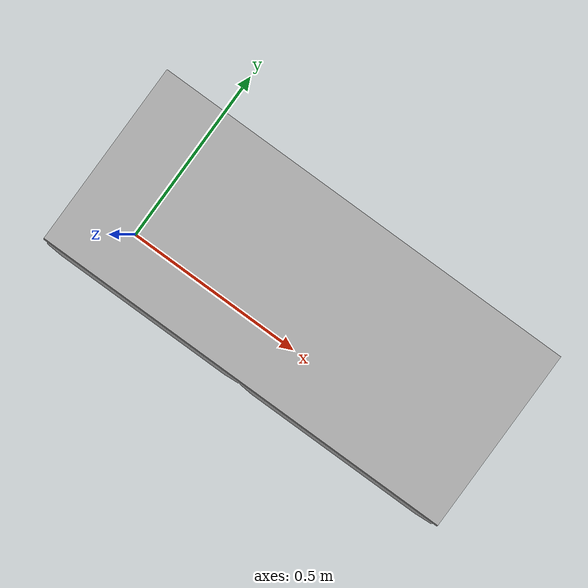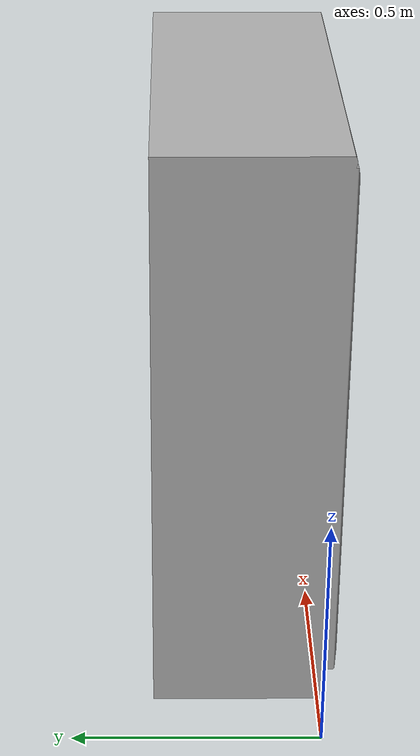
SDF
<?xml version='1.0'?>
<sdf version="1.6">
<model name="cupboard_model">
  <pose>0 0 0.1 0 0 0</pose>
  <static>true</static>
    <link name= "body">
      <collision name="collision">
        <geometry>
          <box>
            <size>1 1 5</size>
          </box>
        </geometry>
      </collision>
      <visual name="visual">
        <geometry>
          <mesh><uri>model://cupboard_model_3d.dae</uri></mesh>
        </geometry>
        <material name="Grey">
          <ambient>1 1 0.67 1</ambient>
          <diffuse>0.67 0.67 0.67 1</diffuse>
          <specular>0.1 0.1 0.1 1</specular>
          <emissive>0 0 0 0</emissive>
        </material>
      </visual>
  </link>
  </model>
</sdf>
